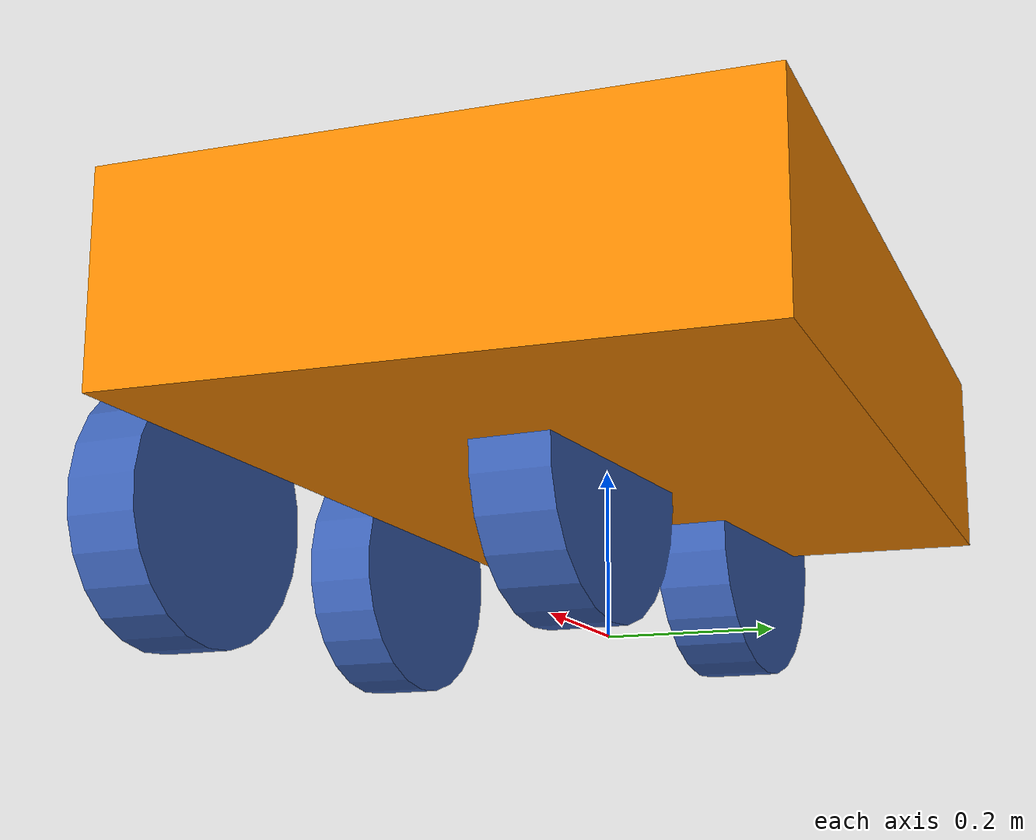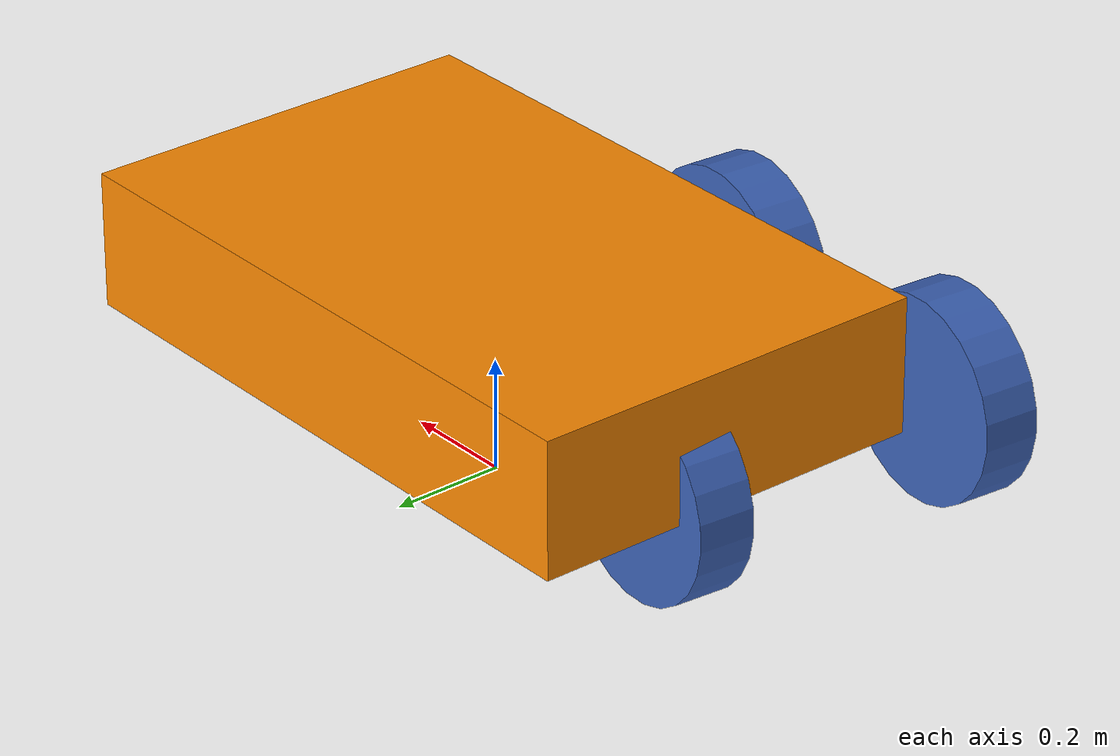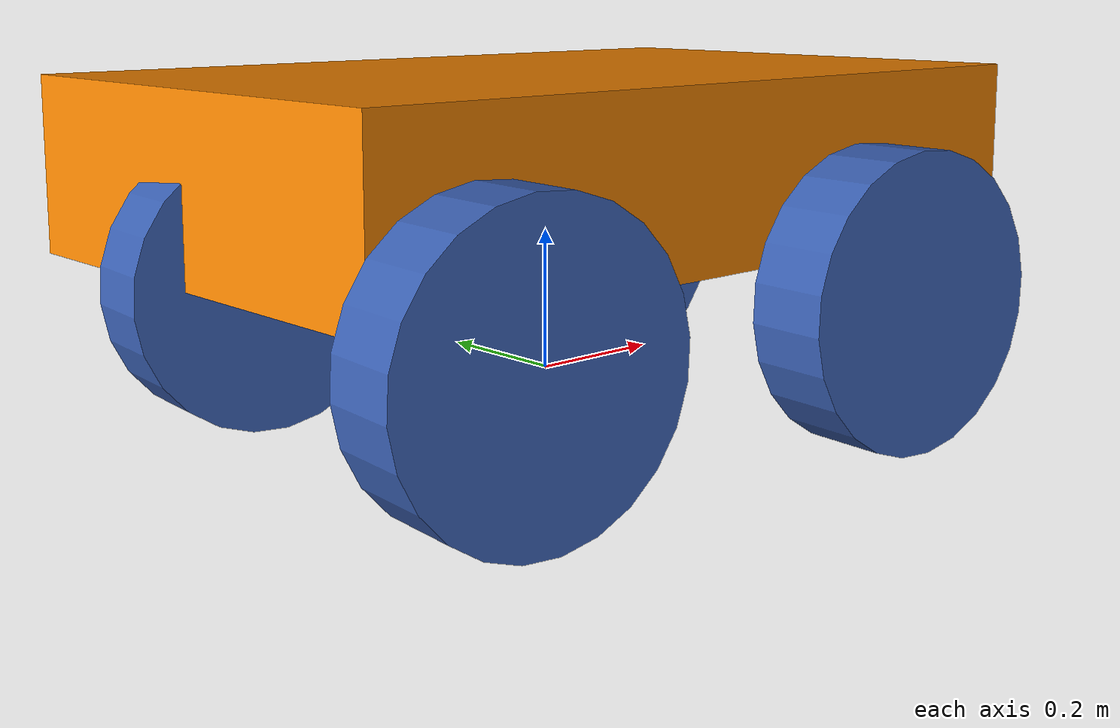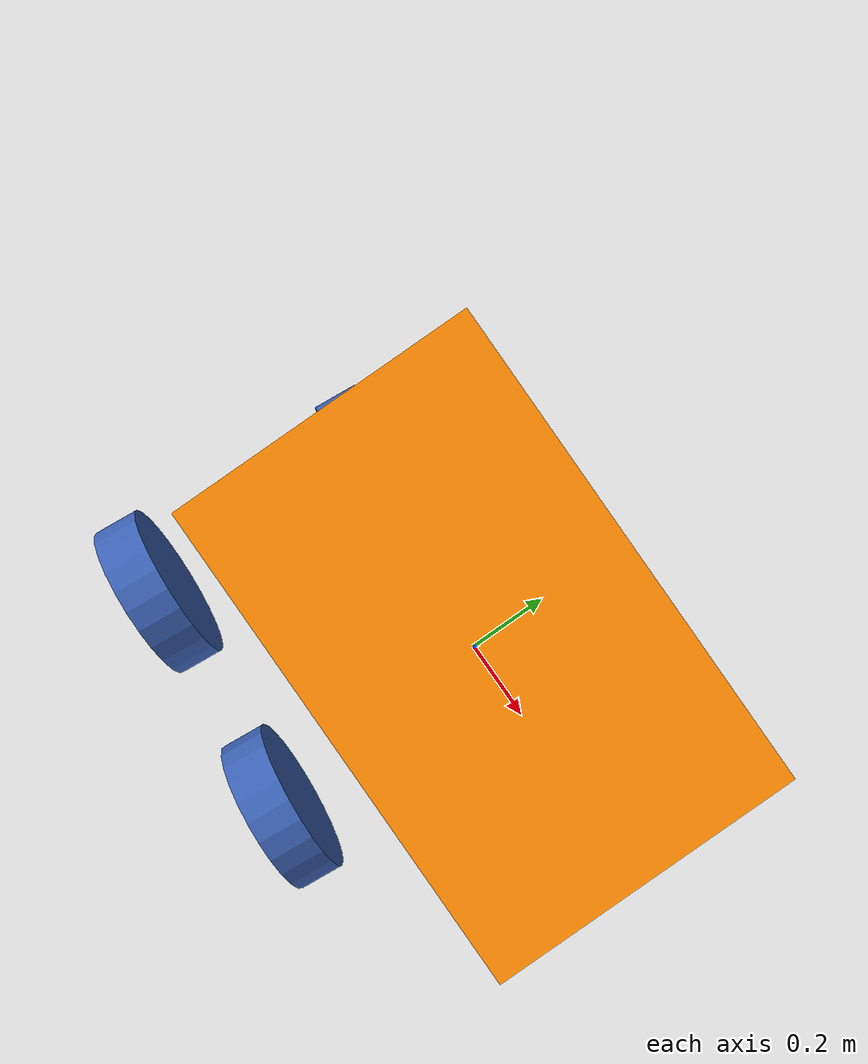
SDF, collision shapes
<?xml version="1.0" ?>
<sdf version="1.9"><model name="lunabotics_rover"><self_collide>false</self_collide>
<link name="base_link"><pose>0 0 0.307893 0 0 0</pose>
<inertial><mass>55</mass><inertia><ixx>5</ixx><iyy>7</iyy><izz>8</izz></inertia></inertial>
<collision name="chassis_collision"><geometry><box><size>1.15 0.72 0.24</size></box></geometry></collision>
<visual name="cad_30___30___1_0"><pose>0.110684987 -0.115575851 0.349837845 3.14159265 -1.01962506e-06 3.05432735</pose><geometry><mesh><uri>model://lunabotics_rover/meshes/_30___30___1.stl</uri></mesh></geometry><material><diffuse>0.972549 0.529412 0.00392157 1</diffuse></material></visual>
<visual name="cad_30___30___2_0"><pose>0.315863487 -0.0536427312 0.348708652 3.14159265 -1.01962505e-06 3.05432735</pose><geometry><mesh><uri>model://lunabotics_rover/meshes/_30___30___2.stl</uri></mesh></geometry><material><diffuse>0.972549 0.529412 0.00392157 1</diffuse></material></visual>
<visual name="cad_30___30___403_0"><pose>-0.335534067 -0.03155495 0.534827806 0.27076823 -1.57079251 1.21276646</pose><geometry><mesh><uri>model://lunabotics_rover/meshes/_30___30___403.stl</uri></mesh></geometry><material><diffuse>0.615686 0.811765 0.929412 1</diffuse></material></visual>
<visual name="cad_30___30___403_1_0"><pose>0.0622874277 -0.498443444 -0.26930164 0.270767051 1.57079251 1.75429705</pose><geometry><mesh><uri>model://lunabotics_rover/meshes/_30___30___403.stl</uri></mesh></geometry><material><diffuse>0.615686 0.811765 0.929412 1</diffuse></material></visual>
<visual name="cad_30___30___403_2_0"><pose>-0.373049699 -0.460356888 -0.269301194 0.270767051 1.57079251 1.75429705</pose><geometry><mesh><uri>model://lunabotics_rover/meshes/_30___30___403.stl</uri></mesh></geometry><material><diffuse>0.615686 0.811765 0.929412 1</diffuse></material></visual>
<visual name="cad_30___30___403_3_0"><pose>0.0998027449 -0.0696610931 -0.268172639 -0.625611095 1.5707918 0.857919924</pose><geometry><mesh><uri>model://lunabotics_rover/meshes/_30___30___403.stl</uri></mesh></geometry><material><diffuse>0.615686 0.811765 0.929412 1</diffuse></material></visual>
<visual name="cad_30___30___700_0"><pose>0.0770620199 -0.499882703 0.215709345 3.14159102 -6.00321265e-12 1.48353</pose><geometry><mesh><uri>model://lunabotics_rover/meshes/_30___30___700.stl</uri></mesh></geometry><material><diffuse>0.498039 0.498039 0.498039 1</diffuse></material></visual>
<visual name="cad_30___30___700_1_0"><pose>-0.556599265 0.288930843 -0.083187598 3.14159265 -1.57079265 -1.65805898</pose><geometry><mesh><uri>model://lunabotics_rover/meshes/_30___30___700.stl</uri></mesh></geometry><material><diffuse>0.498039 0.498039 0.498039 1</diffuse></material></visual>
<visual name="cad_30___60___400_0"><pose>0.021509516 -0.981718243 -0.0851010671 1.57079531 3.6732051e-06 3.05433</pose><geometry><mesh><uri>model://lunabotics_rover/meshes/_30___60___400.stl</uri></mesh></geometry><material><diffuse>0.647059 0.647059 0.647059 1</diffuse></material></visual>
<visual name="cad_30___60___400_1_0"><pose>-0.52440539 -0.933958973 -0.0851009569 1.57079531 3.6732051e-06 3.05433</pose><geometry><mesh><uri>model://lunabotics_rover/meshes/_30___60___400.stl</uri></mesh></geometry><material><diffuse>0.647059 0.647059 0.647059 1</diffuse></material></visual>
<visual name="cad_40___40___1_0"><pose>0.0605929689 -0.0816412735 0.426030699 3.14159265 -1.01962505e-06 3.05432735</pose><geometry><mesh><uri>model://lunabotics_rover/meshes/_40___40___1.stl</uri></mesh></geometry><material><diffuse>0.768627 0.886275 0.952941 1</diffuse></material></visual>
<visual name="cad_40___40___1_1_0"><pose>-0.108735519 -0.0665242583 -0.00809871925 3.14159265 1.63396474e-06 3.05433</pose><geometry><mesh><uri>model://lunabotics_rover/meshes/_40___40___1.stl</uri></mesh></geometry><material><diffuse>0.768627 0.886275 0.952941 1</diffuse></material></visual>
<visual name="cad_40___40___407_0"><pose>0.0499700797 -0.498158328 0.11033349 -1.15225143 -1.57079231 -2.07661122</pose><geometry><mesh><uri>model://lunabotics_rover/meshes/_40___40___407.stl</uri></mesh></geometry><material><diffuse>0.980392 0.713726 0.00392157 1</diffuse></material></visual>
<visual name="cad_40___40___407_1_0"><pose>0.0874835017 -0.0693724554 0.111461415 1.84156823 -1.57079251 1.21276646</pose><geometry><mesh><uri>model://lunabotics_rover/meshes/_40___40___407.stl</uri></mesh></geometry><material><diffuse>0.980392 0.713726 0.00392157 1</diffuse></material></visual>
<visual name="cad_57blr70_24_02_hg50_p5_2_0"><pose>0.0851721074 -0.0859379846 -0.127393018 1.57079531 3.6732051e-06 3.05433</pose><geometry><mesh><uri>model://lunabotics_rover/meshes/_57BLR70_24_02_HG50_P5.stl</uri></mesh></geometry><material><diffuse>0.74902 0.74902 0.74902 1</diffuse></material></visual>
<visual name="cad_57blr70_24_02_hg50_p5_3_0"><pose>-0.462735159 -0.038004413 -0.127393018 1.57079531 3.6732051e-06 3.05433</pose><geometry><mesh><uri>model://lunabotics_rover/meshes/_57BLR70_24_02_HG50_P5.stl</uri></mesh></geometry><material><diffuse>0.74902 0.74902 0.74902 1</diffuse></material></visual>
<visual name="cad_57blr70_24_02_hg50_p6_2_0"><pose>0.0882224 -0.0510733 -0.127393 1.5708 1.08845e-08 3.05432898</pose><geometry><mesh><uri>model://lunabotics_rover/meshes/_57BLR70_24_02_HG50_P6.stl</uri></mesh></geometry><material><diffuse>0.996078 0.996078 1 1</diffuse></material></visual>
<visual name="cad_57blr70_24_02_hg50_p6_3_0"><pose>-0.459685 -0.00313762 -0.127393 1.5708 1.08845e-08 3.05432898</pose><geometry><mesh><uri>model://lunabotics_rover/meshes/_57BLR70_24_02_HG50_P6.stl</uri></mesh></geometry><material><diffuse>0.996078 0.996078 1 1</diffuse></material></visual>
<visual name="cad_flange_0"><pose>-0.488630476 -0.333993863 -0.127392279 3.14158492 0.440172643 -0.0872654033</pose><geometry><mesh><uri>model://lunabotics_rover/meshes/flange.stl</uri></mesh></geometry><material><diffuse>0.647059 0.647059 0.647059 1</diffuse></material></visual>
<visual name="cad_flange_1_0"><pose>-0.471302256 -0.135930426 -0.127392012 -3.14158492 -0.440169989 3.05432725</pose><geometry><mesh><uri>model://lunabotics_rover/meshes/flange.stl</uri></mesh></geometry><material><diffuse>0.647059 0.647059 0.647059 1</diffuse></material></visual>
<visual name="cad_flange_2_0"><pose>0.0592767414 -0.381927994 -0.127392273 3.14158492 0.440172643 -0.0872654033</pose><geometry><mesh><uri>model://lunabotics_rover/meshes/flange.stl</uri></mesh></geometry><material><diffuse>0.647059 0.647059 0.647059 1</diffuse></material></visual>
<visual name="cad_flange_3_0"><pose>0.0766049614 -0.183864556 -0.127392006 -3.14158492 -0.440169989 3.05432725</pose><geometry><mesh><uri>model://lunabotics_rover/meshes/flange.stl</uri></mesh></geometry><material><diffuse>0.647059 0.647059 0.647059 1</diffuse></material></visual>
<visual name="cad_root_0"><pose>-0.106659 -0.267472 -0.172771 1.49729e-08 -0.0118576 3.05432898</pose><geometry><mesh><uri>model://lunabotics_rover/meshes/bucket.stl</uri></mesh></geometry><material><diffuse>0.615686 0.811765 0.929412 1</diffuse></material></visual>
<visual name="cad_root_1"><pose>0.214917 -0.295606 0.101718 1.25193e-06 1.55884 3.05432898</pose><geometry><mesh><uri>model://lunabotics_rover/meshes/electronics.stl</uri></mesh></geometry><material><diffuse>0.647059 0.647059 0.647059 1</diffuse></material></visual>
<visual name="cad_root_2"><pose>-0.488744 -0.335289 -0.127393 -3.14159 0.107623 3.05432898</pose><geometry><mesh><uri>model://lunabotics_rover/meshes/_57BLR50_24_01_P1_Back_Mirrored.stl</uri></mesh></geometry><material><diffuse>0.996078 0.996078 1 1</diffuse></material></visual>
<visual name="cad_root_3"><pose>-0.489964 -0.349236 -0.127393 -1.5708 1.08845e-08 3.05432898</pose><geometry><mesh><uri>model://lunabotics_rover/meshes/_57BLR70_24_02_HG50_P2.stl</uri></mesh></geometry><material><diffuse>0.25098 0.25098 0.25098 1</diffuse></material></visual>
<visual name="cad_root_4"><pose>-0.496327 -0.421958 -0.127393 3.14159265 1.57079265 1.48352993</pose><geometry><mesh><uri>model://lunabotics_rover/meshes/_57BLR70_24_02_HG50_P4.stl</uri></mesh></geometry><material><diffuse>0.996078 0.996078 1 1</diffuse></material></visual>
<visual name="cad_root_5"><pose>-0.500249 -0.466787 -0.127393 1.5708 4.23867e-08 -0.0872663268</pose><geometry><mesh><uri>model://lunabotics_rover/meshes/_57BLR70_24_02_HG50_P6.stl</uri></mesh></geometry><material><diffuse>0.996078 0.996078 1 1</diffuse></material></visual>
<visual name="cad_root_6"><pose>-0.497198 -0.43192 -0.127393 -1.5708 1.08845e-08 3.05432898</pose><geometry><mesh><uri>model://lunabotics_rover/meshes/_57BLR70_24_02_HG50_P5.stl</uri></mesh></geometry><material><diffuse>0.74902 0.74902 0.74902 1</diffuse></material></visual>
<visual name="cad_root_7"><pose>-0.495019 -0.407015 -0.127393 1.5708 -1.08845e-08 -0.0872663268</pose><geometry><mesh><uri>model://lunabotics_rover/meshes/_57BLR70_24_02_HG50_P3.stl</uri></mesh></geometry><material><diffuse>0.996078 0.996078 1 1</diffuse></material></visual>
<visual name="cad_root_8"><pose>0.0591629 -0.383225 -0.127393 -3.14159 0.107623 3.05432898</pose><geometry><mesh><uri>model://lunabotics_rover/meshes/_57BLR50_24_01_P1_Back_Mirrored.stl</uri></mesh></geometry><material><diffuse>0.996078 0.996078 1 1</diffuse></material></visual>
<visual name="cad_root_9"><pose>0.0579428 -0.397171 -0.127393 -1.5708 1.08845e-08 3.05432898</pose><geometry><mesh><uri>model://lunabotics_rover/meshes/_57BLR70_24_02_HG50_P2.stl</uri></mesh></geometry><material><diffuse>0.25098 0.25098 0.25098 1</diffuse></material></visual>
<visual name="cad_root_10"><pose>0.0476584 -0.514722 -0.127393 1.5708 4.23867e-08 -0.0872663268</pose><geometry><mesh><uri>model://lunabotics_rover/meshes/_57BLR70_24_02_HG50_P6.stl</uri></mesh></geometry><material><diffuse>0.996078 0.996078 1 1</diffuse></material></visual>
<visual name="cad_root_11"><pose>0.0507088 -0.479855 -0.127393 -1.5708 1.08845e-08 3.05432898</pose><geometry><mesh><uri>model://lunabotics_rover/meshes/_57BLR70_24_02_HG50_P5.stl</uri></mesh></geometry><material><diffuse>0.74902 0.74902 0.74902 1</diffuse></material></visual>
<visual name="cad_root_12"><pose>0.0528877 -0.454951 -0.127393 1.5708 -1.08845e-08 -0.0872663268</pose><geometry><mesh><uri>model://lunabotics_rover/meshes/_57BLR70_24_02_HG50_P3.stl</uri></mesh></geometry><material><diffuse>0.996078 0.996078 1 1</diffuse></material></visual>
<visual name="cad_root_13"><pose>0.0515804 -0.469893 -0.127393 3.14159265 1.57079265 1.48352993</pose><geometry><mesh><uri>model://lunabotics_rover/meshes/_57BLR70_24_02_HG50_P4.stl</uri></mesh></geometry><material><diffuse>0.996078 0.996078 1 1</diffuse></material></visual>
<visual name="cad_root_14"><pose>0.0767178 -0.182571 -0.127393 1.50614e-08 0.107623 3.05432898</pose><geometry><mesh><uri>model://lunabotics_rover/meshes/_57BLR50_24_01_P1_Back.stl</uri></mesh></geometry><material><diffuse>0.996078 0.996078 1 1</diffuse></material></visual>
<visual name="cad_root_15"><pose>0.0843004 -0.095902 -0.127393 1.5708 1.08845e-08 3.05432898</pose><geometry><mesh><uri>model://lunabotics_rover/meshes/_57BLR70_24_02_HG50_P4.stl</uri></mesh></geometry><material><diffuse>0.996078 0.996078 1 1</diffuse></material></visual>
<visual name="cad_root_16"><pose>0.0829931 -0.110845 -0.127393 1.5708 1.08845e-08 3.05432898</pose><geometry><mesh><uri>model://lunabotics_rover/meshes/_57BLR70_24_02_HG50_P3.stl</uri></mesh></geometry><material><diffuse>0.996078 0.996078 1 1</diffuse></material></visual>
<visual name="cad_root_17"><pose>0.077938 -0.168624 -0.127393 1.5708 1.08845e-08 3.05432898</pose><geometry><mesh><uri>model://lunabotics_rover/meshes/_57BLR70_24_02_HG50_P2.stl</uri></mesh></geometry><material><diffuse>0.25098 0.25098 0.25098 1</diffuse></material></visual>
<visual name="cad_root_18"><pose>-0.471189 -0.134635 -0.127393 1.50614e-08 0.107623 3.05432898</pose><geometry><mesh><uri>model://lunabotics_rover/meshes/_57BLR50_24_01_P1_Back.stl</uri></mesh></geometry><material><diffuse>0.996078 0.996078 1 1</diffuse></material></visual>
<visual name="cad_root_19"><pose>-0.463607 -0.0479664 -0.127393 1.5708 1.08845e-08 3.05432898</pose><geometry><mesh><uri>model://lunabotics_rover/meshes/_57BLR70_24_02_HG50_P4.stl</uri></mesh></geometry><material><diffuse>0.996078 0.996078 1 1</diffuse></material></visual>
<visual name="cad_root_20"><pose>-0.464914 -0.0629093 -0.127393 1.5708 1.08845e-08 3.05432898</pose><geometry><mesh><uri>model://lunabotics_rover/meshes/_57BLR70_24_02_HG50_P3.stl</uri></mesh></geometry><material><diffuse>0.996078 0.996078 1 1</diffuse></material></visual>
<visual name="cad_root_21"><pose>-0.469969 -0.120689 -0.127393 1.5708 1.08845e-08 3.05432898</pose><geometry><mesh><uri>model://lunabotics_rover/meshes/_57BLR70_24_02_HG50_P2.stl</uri></mesh></geometry><material><diffuse>0.25098 0.25098 0.25098 1</diffuse></material></visual>
</link>
<link name="rear_left_wheel"><pose>-0.455876458 0.0403961026 0.18049975 1.03870241e-05 -0.440169989 3.05432725</pose><inertial><mass>8.93632</mass><inertia><ixx>0.0797664</ixx><iyy>0.146428</iyy><izz>0.0797664</izz></inertia></inertial><collision name="collision"><pose>0 0 0 1.5708 0 0</pose><geometry><cylinder><radius>0.1805</radius><length>0.1</length></cylinder></geometry><surface><friction><ode><mu>2.0</mu><mu2>2.0</mu2></ode></friction></surface></collision><visual name="visual"><pose>0 0.027 0 0 0 0</pose><geometry><mesh><uri>model://lunabotics_rover/meshes/wheel.stl</uri></mesh></geometry><material><diffuse>0.231373 0.380392 0.705882 1</diffuse></material></visual></link>
<joint name="rear_left_wheel_joint" type="revolute"><parent>base_link</parent><child>rear_left_wheel</child><axis><xyz expressed_in="__model__">-0.0871502784 -0.996195176 9.39692513e-06</xyz><limit><lower>-1e16</lower><upper>1e16</upper><effort>80</effort><velocity>25</velocity></limit></axis></joint>
<link name="front_left_wheel"><pose>0.0920310857 -0.00753719195 0.180499309 5.07984453e-06 -0.440169989 3.05432725</pose><inertial><mass>8.93632</mass><inertia><ixx>0.0797664</ixx><iyy>0.146428</iyy><izz>0.0797664</izz></inertia></inertial><collision name="collision"><pose>0 0 0 1.5708 0 0</pose><geometry><cylinder><radius>0.1805</radius><length>0.1</length></cylinder></geometry><surface><friction><ode><mu>2.0</mu><mu2>2.0</mu2></ode></friction></surface></collision><visual name="visual"><pose>0 0.027 0 0 0 0</pose><geometry><mesh><uri>model://lunabotics_rover/meshes/wheel.stl</uri></mesh></geometry><material><diffuse>0.231373 0.380392 0.705882 1</diffuse></material></visual></link>
<joint name="front_left_wheel_joint" type="revolute"><parent>base_link</parent><child>front_left_wheel</child><axis><xyz expressed_in="__model__">-0.0871502784 -0.996195176 9.39692513e-06</xyz><limit><lower>-1e16</lower><upper>1e16</upper><effort>80</effort><velocity>25</velocity></limit></axis></joint>
<link name="rear_right_wheel"><pose>-0.504055497 -0.51032046 0.180503617 -3.14158492 -0.440169989 3.05432725</pose><inertial><mass>8.93631</mass><inertia><ixx>0.0797664</ixx><iyy>0.146428</iyy><izz>0.0797664</izz></inertia></inertial><collision name="collision"><pose>0 0 0 1.5708 0 0</pose><geometry><cylinder><radius>0.1805</radius><length>0.1</length></cylinder></geometry><surface><friction><ode><mu>2.0</mu><mu2>2.0</mu2></ode></friction></surface></collision><visual name="visual"><pose>0 0.027 0 0 0 0</pose><geometry><mesh><uri>model://lunabotics_rover/meshes/wheel_Mirrored.stl</uri></mesh></geometry><material><diffuse>0.231373 0.380392 0.705882 1</diffuse></material></visual></link>
<joint name="rear_right_wheel_joint" type="revolute"><parent>base_link</parent><child>rear_right_wheel</child><axis><xyz expressed_in="__model__">-0.0871502784 -0.996195176 9.39692513e-06</xyz><limit><lower>-1e16</lower><upper>1e16</upper><effort>80</effort><velocity>25</velocity></limit></axis></joint>
<link name="front_right_wheel"><pose>0.0438520461 -0.558253755 0.180503177 -3.14158492 -0.440169989 3.05432725</pose><inertial><mass>8.93631</mass><inertia><ixx>0.0797664</ixx><iyy>0.146428</iyy><izz>0.0797664</izz></inertia></inertial><collision name="collision"><pose>0 0 0 1.5708 0 0</pose><geometry><cylinder><radius>0.1805</radius><length>0.1</length></cylinder></geometry><surface><friction><ode><mu>2.0</mu><mu2>2.0</mu2></ode></friction></surface></collision><visual name="visual"><pose>0 0.027 0 0 0 0</pose><geometry><mesh><uri>model://lunabotics_rover/meshes/wheel_Mirrored.stl</uri></mesh></geometry><material><diffuse>0.231373 0.380392 0.705882 1</diffuse></material></visual></link>
<joint name="front_right_wheel_joint" type="revolute"><parent>base_link</parent><child>front_right_wheel</child><axis><xyz expressed_in="__model__">-0.0871502784 -0.996195176 9.39692513e-06</xyz><limit><lower>-1e16</lower><upper>1e16</upper><effort>80</effort><velocity>25</velocity></limit></axis></joint>
<plugin filename="gz-sim-diff-drive-system" name="gz::sim::systems::DiffDrive">
<left_joint>rear_left_wheel_joint</left_joint>
<left_joint>front_left_wheel_joint</left_joint>
<right_joint>rear_right_wheel_joint</right_joint>
<right_joint>front_right_wheel_joint</right_joint>
<wheel_separation>0.55</wheel_separation><wheel_radius>0.1805</wheel_radius><topic>cmd_vel</topic><odom_topic>odom</odom_topic><frame_id>odom</frame_id><child_frame_id>base_link</child_frame_id></plugin></model></sdf>
